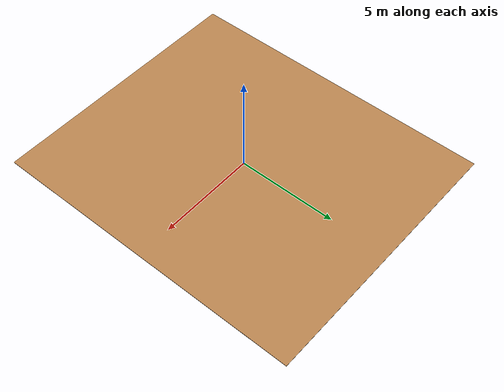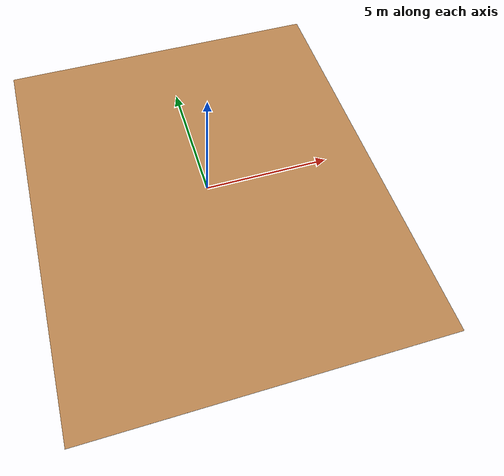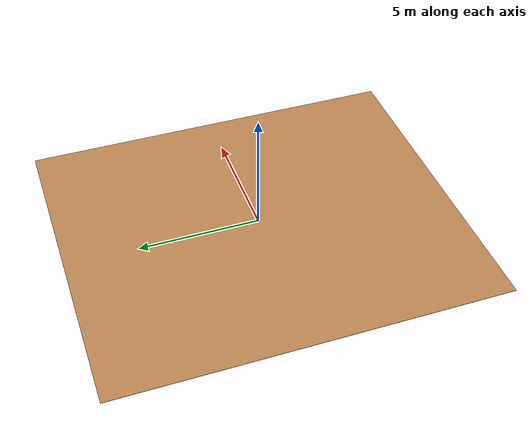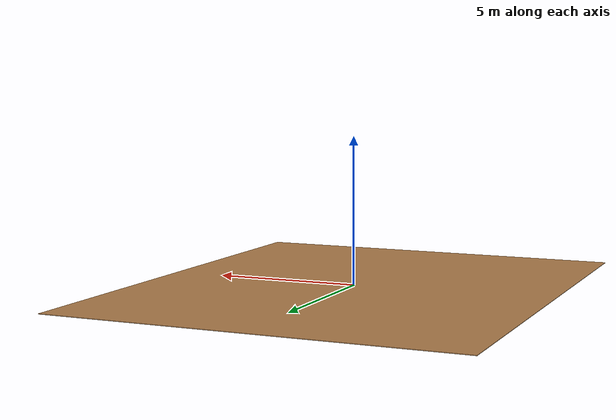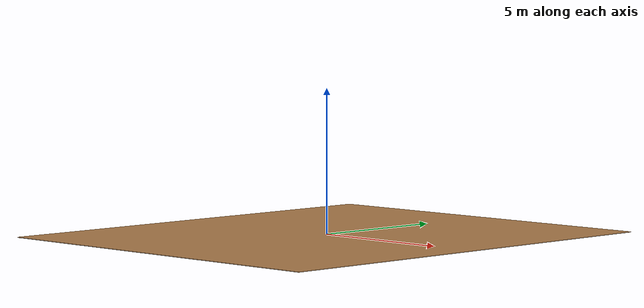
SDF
<?xml version="1.0"?>
<sdf version="1.6">
  <model name="wood_floor"><static>true</static>
    <link name="l">
      <visual name="floor">
        <geometry><box><size>13.6 16.0 0.02</size></box></geometry>
        <material>
          <script>
            <uri>model://wood_floor/materials/scripts</uri>
            <uri>model://wood_floor/materials/textures</uri>
            <name>WoodFloor</name>
          </script>
        </material>
      </visual>
    </link>
  </model>
</sdf>
